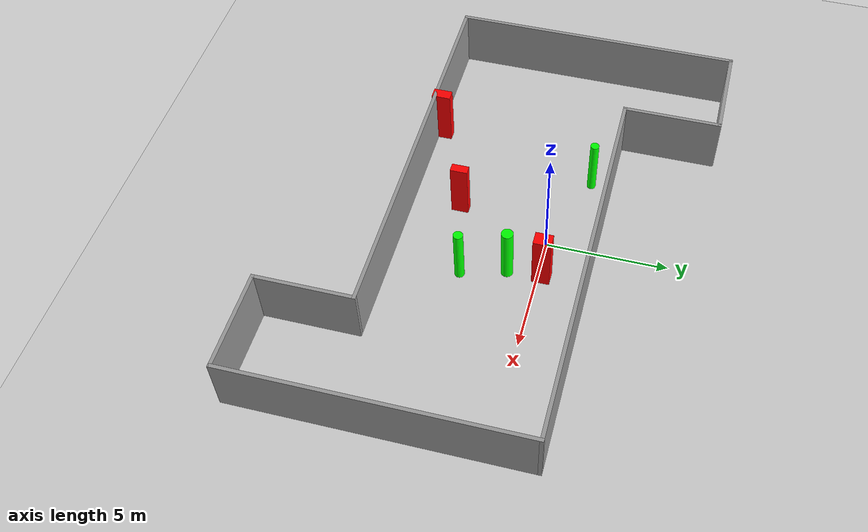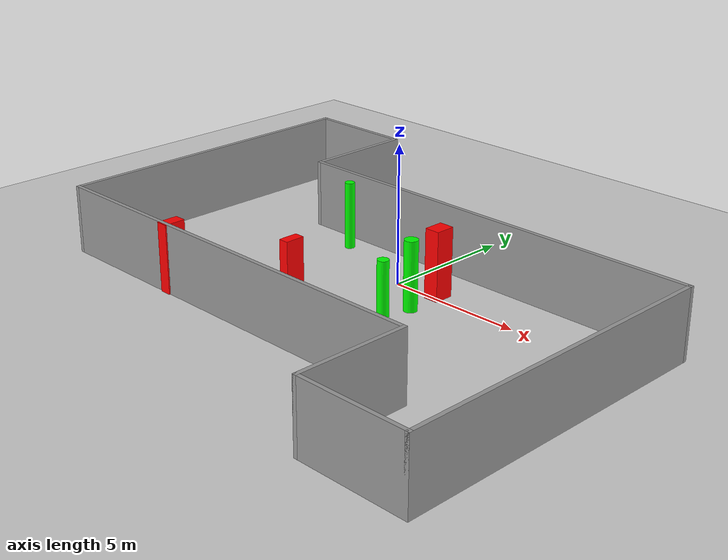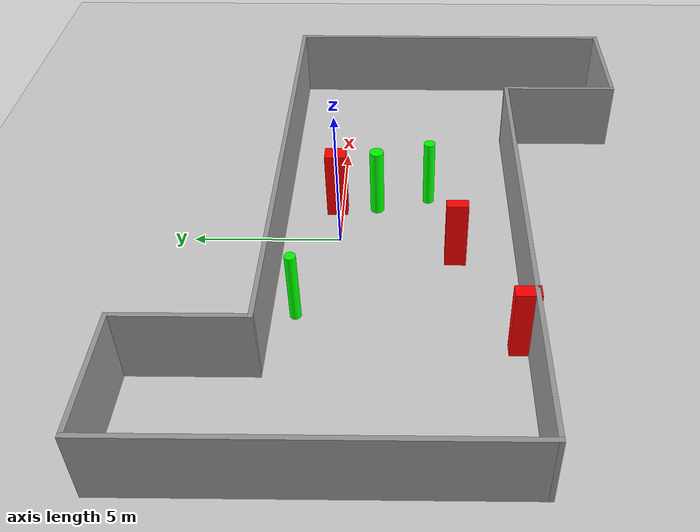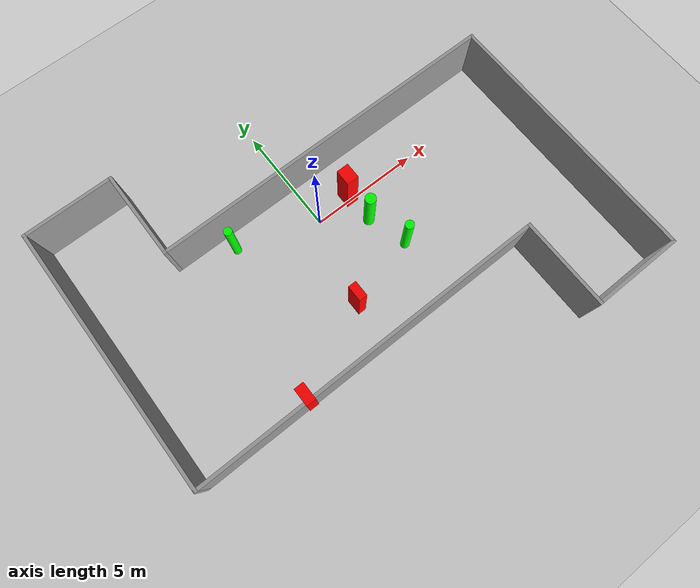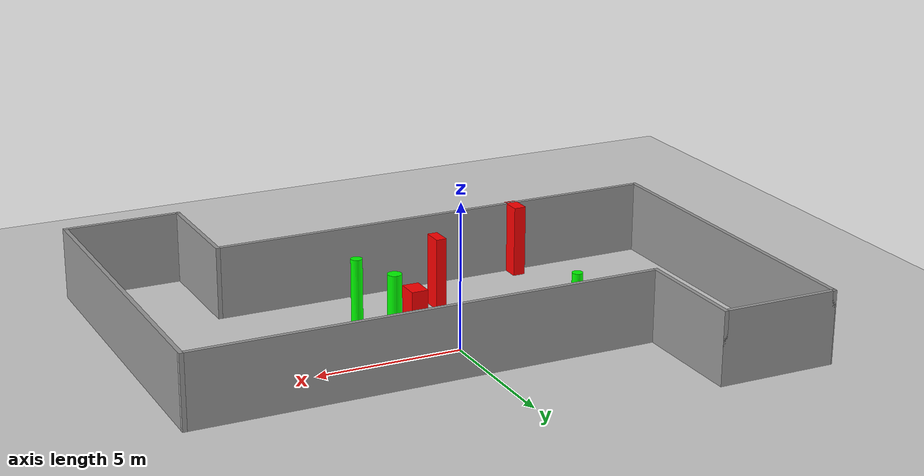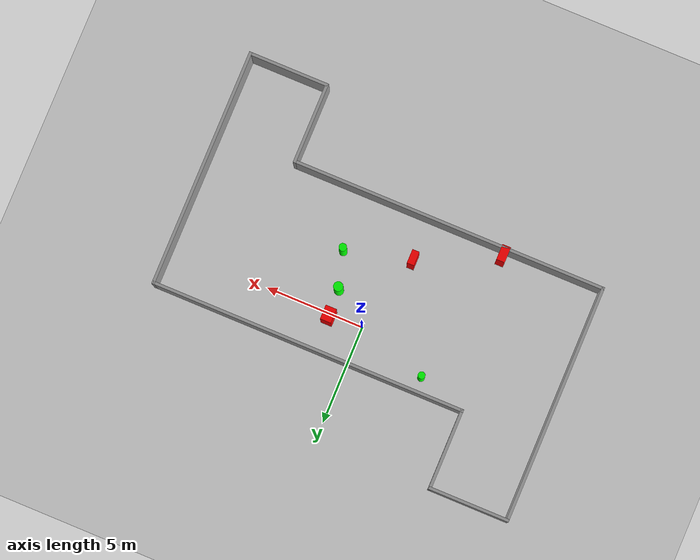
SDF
<sdf version="1.7">
 <world name="default">
  <light name="sun" type="directional">
   <pose>0 0 10 0 -0 0</pose>
   <diffuse>0.8 0.8 0.8 1</diffuse>
   <specular>0.2 0.2 0.2 1</specular>
   <attenuation>
    <range>1000</range>
    <constant>0.9</constant>
    <linear>0.01</linear>
    <quadratic>0.001</quadratic>
   </attenuation>
   <direction>-0.5 0.1 -0.9</direction>
   <spot><inner_angle>0</inner_angle><outer_angle>0</outer_angle><falloff>0</falloff></spot>
  </light>
  <model name="ground_plane">
   <static>1</static>
   <link name="link">
    <collision name="collision">
     <geometry><plane><normal>0 0 1</normal><size>100 100</size></plane></geometry>
     <surface>
      <contact><collide_bitmask>65535</collide_bitmask></contact>
      <friction><ode><mu>100</mu><mu2>50</mu2></ode></friction>
     </surface>
    </collision>
    <visual name="visual">
     <cast_shadows>0</cast_shadows>
     <geometry><plane><normal>0 0 1</normal><size>100 100</size></plane></geometry>
     <material>
      <script><uri>file://media/materials/scripts/gazebo.material</uri><name>Gazebo/Grey</name></script>
     </material>
    </visual>
   </link>
  </model>
  <gravity>0 0 -9.8</gravity>
  <magnetic_field>6e-06 2.3e-05 -4.2e-05</magnetic_field>
  <atmosphere type="adiabatic"/>
  <physics type="ode">
   <max_step_size>0.001</max_step_size>
   <real_time_factor>1</real_time_factor>
   <real_time_update_rate>1000</real_time_update_rate>
  </physics>
  <scene><ambient>0.4 0.4 0.4 1</ambient><background>0.7 0.7 0.7 1</background><shadows>1</shadows></scene>
  <spherical_coordinates>
   <surface_model>EARTH_WGS84</surface_model>
   <latitude_deg>0</latitude_deg>
   <longitude_deg>0</longitude_deg>
   <elevation>0</elevation>
   <heading_deg>0</heading_deg>
  </spherical_coordinates>
  <model name="my_base_walls">
   <link name="Wall_13">
    <collision name="Wall_13_Collision">
     <geometry><box><size>12.15 0.15 2.5</size></box></geometry>
     <pose>0 0 1.25 0 -0 0</pose>
    </collision>
    <visual name="Wall_13_Visual">
     <pose>0 0 1.25 0 -0 0</pose>
     <geometry><box><size>12.15 0.15 2.5</size></box></geometry>
     <material>
      <script><uri>file://media/materials/scripts/gazebo.material</uri><name>Gazebo/Grey</name></script>
      <ambient>1 1 1 1</ambient>
     </material>
     <meta><layer>0</layer></meta>
    </visual>
    <pose>10 -2 0 0 -0 1.5708</pose>
   </link>
   <link name="Wall_15">
    <collision name="Wall_15_Collision">
     <geometry><box><size>16.15 0.15 2.5</size></box></geometry>
     <pose>0 0 1.25 0 -0 0</pose>
    </collision>
    <visual name="Wall_15_Visual">
     <pose>0 0 1.25 0 -0 0</pose>
     <geometry><box><size>16.15 0.15 2.5</size></box></geometry>
     <material>
      <script><uri>file://media/materials/scripts/gazebo.material</uri><name>Gazebo/Grey</name></script>
      <ambient>1 1 1 1</ambient>
     </material>
     <meta><layer>0</layer></meta>
    </visual>
    <pose>2 4 0 0 -0 3.14159</pose>
   </link>
   <link name="Wall_17">
    <collision name="Wall_17_Collision">
     <geometry><box><size>4.15 0.15 2.5</size></box></geometry>
     <pose>0 0 1.25 0 -0 0</pose>
    </collision>
    <visual name="Wall_17_Visual">
     <pose>0 0 1.25 0 -0 0</pose>
     <geometry><box><size>4.15 0.15 2.5</size></box></geometry>
     <material>
      <script><uri>file://media/materials/scripts/gazebo.material</uri><name>Gazebo/Grey</name></script>
      <ambient>1 1 1 1</ambient>
     </material>
     <meta><layer>0</layer></meta>
    </visual>
    <pose>6 -6 0 0 -0 -1.5708</pose>
   </link>
   <link name="Wall_19">
    <collision name="Wall_19_Collision">
     <geometry><box><size>12.15 0.15 2.5</size></box></geometry>
     <pose>0 0 1.25 0 -0 0</pose>
    </collision>
    <visual name="Wall_19_Visual">
     <pose>0 0 1.25 0 -0 0</pose>
     <geometry><box><size>12.15 0.15 2.5</size></box></geometry>
     <material>
      <script><uri>file://media/materials/scripts/gazebo.material</uri><name>Gazebo/Grey</name></script>
      <ambient>1 1 1 1</ambient>
     </material>
     <meta><layer>0</layer></meta>
    </visual>
    <pose>-10 2 0 0 -0 1.5708</pose>
   </link>
   <link name="Wall_21">
    <collision name="Wall_21_Collision">
     <geometry><box><size>4.15 0.15 2.5</size></box></geometry>
     <pose>0 0 1.25 0 -0 0</pose>
    </collision>
    <visual name="Wall_21_Visual">
     <pose>0 0 1.25 0 -0 0</pose>
     <geometry><box><size>4.15 0.15 2.5</size></box></geometry>
     <material>
      <script><uri>file://media/materials/scripts/gazebo.material</uri><name>Gazebo/Grey</name></script>
      <ambient>1 1 1 1</ambient>
     </material>
     <meta><layer>0</layer></meta>
    </visual>
    <pose>-8 8 0 0 -0 0</pose>
   </link>
   <link name="Wall_23">
    <collision name="Wall_23_Collision">
     <geometry><box><size>4.15 0.15 2.5</size></box></geometry>
     <pose>0 0 1.25 0 -0 0</pose>
    </collision>
    <visual name="Wall_23_Visual">
     <pose>0 0 1.25 0 -0 0</pose>
     <geometry><box><size>4.15 0.15 2.5</size></box></geometry>
     <material>
      <script><uri>file://media/materials/scripts/gazebo.material</uri><name>Gazebo/Grey</name></script>
      <ambient>1 1 1 1</ambient>
     </material>
     <meta><layer>0</layer></meta>
    </visual>
    <pose>-6 6 0 0 -0 -1.5708</pose>
   </link>
   <link name="Wall_25">
    <collision name="Wall_25_Collision">
     <geometry><box><size>4.15 0.15 2.5</size></box></geometry>
     <pose>0 0 1.25 0 -0 0</pose>
    </collision>
    <visual name="Wall_25_Visual">
     <pose>0 0 1.25 0 -0 0</pose>
     <geometry><box><size>4.15 0.15 2.5</size></box></geometry>
     <material>
      <script><uri>file://media/materials/scripts/gazebo.material</uri><name>Gazebo/Grey</name></script>
      <ambient>1 1 1 1</ambient>
     </material>
     <meta><layer>0</layer></meta>
    </visual>
    <pose>8 -8 0 0 -0 0</pose>
   </link>
   <link name="Wall_9">
    <collision name="Wall_9_Collision">
     <geometry><box><size>16.15 0.15 2.5</size></box></geometry>
     <pose>0 0 1.25 0 -0 0</pose>
    </collision>
    <visual name="Wall_9_Visual">
     <pose>0 0 1.25 0 -0 0</pose>
     <geometry><box><size>16.15 0.15 2.5</size></box></geometry>
     <material>
      <script><uri>file://media/materials/scripts/gazebo.material</uri><name>Gazebo/Grey</name></script>
      <ambient>1 1 1 1</ambient>
     </material>
     <meta><layer>0</layer></meta>
    </visual>
    <pose>-2 -4 0 0 -0 3.14159</pose>
   </link>
   <static>1</static>
   <pose>-0 -2 0 0 -0 0</pose>
  </model>
  <model name="cylinder1">
   <static>1</static>
   <link name="link">
    <inertial>
     <mass>1</mass>
     <inertia><ixx>0.5</ixx><ixy>0</ixy><ixz>0</ixz><iyy>0.5</iyy><iyz>0</iyz><izz>1</izz></inertia>
    </inertial>
    <collision name="collision">
     <geometry><cylinder><radius>0.19799324407635813</radius><length>2.5</length></cylinder></geometry>
    </collision>
    <visual name="visual">
     <geometry><cylinder><radius>0.19799324407635813</radius><length>2.5</length></cylinder></geometry>
     <material>
      <ambient>0 1 0 1</ambient>
      <diffuse>0 1 0 1</diffuse>
      <specular>0.1 0.1 0.1 1</specular>
      <emissive>0 0 0 0</emissive>
     </material>
    </visual>
   </link>
   <pose>2.27436689849168 -3.0482370994158456 1.25 0 0 0</pose>
  </model>
  <model name="cylinder2">
   <static>1</static>
   <link name="link">
    <inertial>
     <mass>1</mass>
     <inertia><ixx>0.5</ixx><ixy>0</ixy><ixz>0</ixz><iyy>0.5</iyy><iyz>0</iyz><izz>1</izz></inertia>
    </inertial>
    <collision name="collision">
     <geometry><cylinder><radius>0.24196450088466978</radius><length>2.5</length></cylinder></geometry>
    </collision>
    <visual name="visual">
     <geometry><cylinder><radius>0.24196450088466978</radius><length>2.5</length></cylinder></geometry>
     <material>
      <ambient>0 1 0 1</ambient>
      <diffuse>0 1 0 1</diffuse>
      <specular>0.1 0.1 0.1 1</specular>
      <emissive>0 0 0 0</emissive>
     </material>
    </visual>
   </link>
   <pose>1.7451288275809045 -1.2229957104568383 1.25 0 0 0</pose>
  </model>
  <model name="cylinder3">
   <static>1</static>
   <link name="link">
    <inertial>
     <mass>1</mass>
     <inertia><ixx>0.5</ixx><ixy>0</ixy><ixz>0</ixz><iyy>0.5</iyy><iyz>0</iyz><izz>1</izz></inertia>
    </inertial>
    <collision name="collision">
     <geometry><cylinder><radius>0.18049016552471006</radius><length>2.5</length></cylinder></geometry>
    </collision>
    <visual name="visual">
     <geometry><cylinder><radius>0.18049016552471006</radius><length>2.5</length></cylinder></geometry>
     <material>
      <ambient>0 1 0 1</ambient>
      <diffuse>0 1 0 1</diffuse>
      <specular>0.1 0.1 0.1 1</specular>
      <emissive>0 0 0 0</emissive>
     </material>
    </visual>
   </link>
   <pose>-3.571616716329235 1.1790152854151579 1.25 0 0 0</pose>
  </model>
  <model name="box1">
   <static>1</static>
   <link name="link">
    <inertial>
     <mass>1</mass>
     <inertia><ixx>0.083</ixx><ixy>0</ixy><ixz>0</ixz><iyy>0.083</iyy><iyz>0</iyz><izz>0.083</izz></inertia>
    </inertial>
    <collision name="collision">
     <geometry><box><size>0.4320496209015099 0.7854549854597543 2.5</size></box></geometry>
    </collision>
    <visual name="visual">
     <geometry><box><size>0.4320496209015099 0.7854549854597543 2.5</size></box></geometry>
     <material>
      <ambient>1 0 0 1</ambient>
      <diffuse>1 0 0 1</diffuse>
      <specular>0.1 0.1 0.1 1</specular>
      <emissive>0 0 0 0</emissive>
     </material>
    </visual>
    <sensor name="my_contact" type="contact">
     <contact><collision>box_collision</collision><topic>__default_topic__</topic></contact>
    </sensor>
   </link>
   <pose>-4.96333271057656 -5.732289339081609 1.25 0 0 0</pose>
  </model>
  <model name="box2">
   <static>1</static>
   <link name="link">
    <inertial>
     <mass>1</mass>
     <inertia><ixx>0.083</ixx><ixy>0</ixy><ixz>0</ixz><iyy>0.083</iyy><iyz>0</iyz><izz>0.083</izz></inertia>
    </inertial>
    <collision name="collision">
     <geometry><box><size>0.5542744414100015 0.722140623212295 2.5</size></box></geometry>
    </collision>
    <visual name="visual">
     <geometry><box><size>0.5542744414100015 0.722140623212295 2.5</size></box></geometry>
     <material>
      <ambient>1 0 0 1</ambient>
      <diffuse>1 0 0 1</diffuse>
      <specular>0.1 0.1 0.1 1</specular>
      <emissive>0 0 0 0</emissive>
     </material>
    </visual>
    <sensor name="my_contact" type="contact">
     <contact><collision>box_collision</collision><topic>__default_topic__</topic></contact>
    </sensor>
   </link>
   <pose>1.6771228867545442 0.1814249616872683 1.25 0 0 0</pose>
  </model>
  <model name="box3">
   <static>1</static>
   <link name="link">
    <inertial>
     <mass>1</mass>
     <inertia><ixx>0.083</ixx><ixy>0</ixy><ixz>0</ixz><iyy>0.083</iyy><iyz>0</iyz><izz>0.083</izz></inertia>
    </inertial>
    <collision name="collision">
     <geometry><box><size>0.360663989660197 0.7093490991821749 2.5</size></box></geometry>
    </collision>
    <visual name="visual">
     <geometry><box><size>0.360663989660197 0.7093490991821749 2.5</size></box></geometry>
     <material>
      <ambient>1 0 0 1</ambient>
      <diffuse>1 0 0 1</diffuse>
      <specular>0.1 0.1 0.1 1</specular>
      <emissive>0 0 0 0</emissive>
     </material>
    </visual>
    <sensor name="my_contact" type="contact">
     <contact><collision>box_collision</collision><topic>__default_topic__</topic></contact>
    </sensor>
   </link>
   <pose>-1.0330151680152877 -3.8895061416237064 1.25 0 0 0</pose>
  </model>
 </world>
</sdf>
